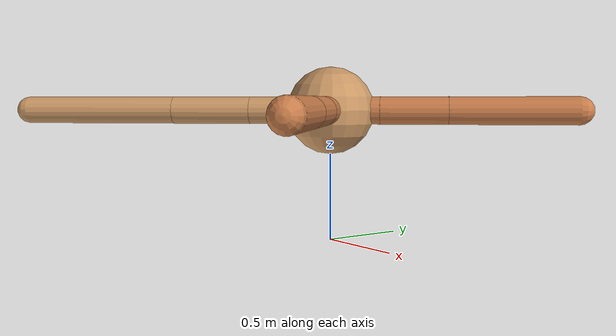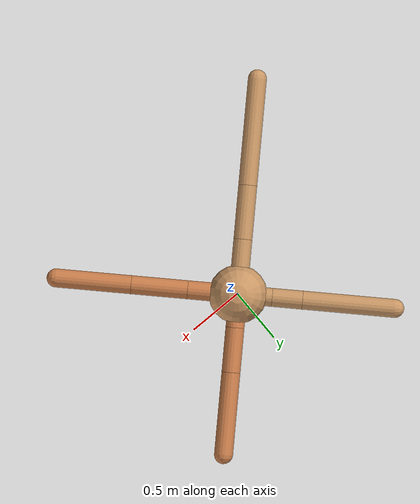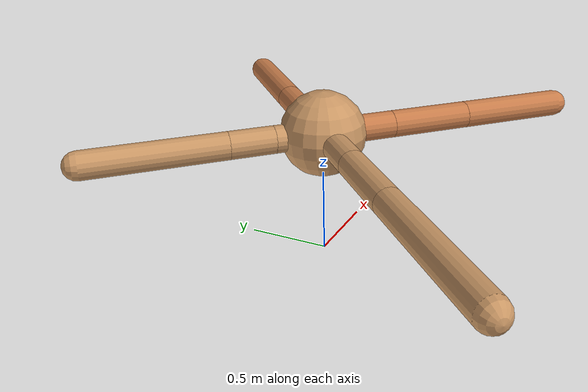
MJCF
<mujoco model="ant">
  <compiler angle="degree" coordinate="local" inertiafromgeom="true" />
  <option integrator="RK4" timestep="0.01" />
  <custom>
    <numeric data="0.0 0.0 0.55 1.0 0.0 0.0 0.0 0.0 1.0 0.0 -1.0 0.0 -1.0 0.0 1.0" name="init_qpos" />
  </custom>
  <default>
    <joint armature="1" damping="1" limited="true" />
    <geom conaffinity="0" condim="3" density="5.0" friction="1.5 0.1 0.1" margin="0.01" rgba="0.8 0.6 0.4 1" />
  </default>
  <worldbody>
    <body name="torso" pos="0 0 0.75">
      <geom name="torso_geom" pos="0 0 0" size="0.25" type="sphere" />

      <body name="front_left_leg" pos="0 0 0">
        <geom fromto="0.0 0.0 0.0 0.2 0.2 0.0" name="aux_1_geom" size="0.08" type="capsule" rgba=".8 .5 .3 1" />
        <body name="aux_1" pos="0.2 0.2 0.0">
          <joint axis="0 0 1" name="hip_1" pos="0.0 0.0 0.0" range="-40 40" type="hinge" />
          <geom fromto="0.0 0.0 0.0 0.2698330181244757 0.2698330181244757 0.0" name="left_leg_geom" size="0.08" type="capsule" rgba=".8 .5 .3 1" />
          <body pos="0.2698330181244757 0.2698330181244757 0.0" name="front_left_foot">
            <joint axis="-1 1 0" name="ankle_1" pos="0.0 0.0 0.0" range="30 100" type="hinge" />
            <geom fromto="0.0 0.0 0.0 0.49726119314078937 0.49726119314078937 0.0" name="left_ankle_geom" size="0.08" type="capsule" rgba=".8 .5 .3 1" />
          </body>
        </body>
      </body>
      <body name="front_right_leg" pos="0 0 0">
        <geom fromto="0.0 0.0 0.0 -0.2044991889078928 0.2044991889078928 0.0" name="aux_2_geom" size="0.08" type="capsule" />
        <body name="aux_2" pos="-0.2044991889078928 0.2044991889078928 0.0">
          <joint axis="0 0 1" name="hip_2" pos="0.0 0.0 0.0" range="-40 40" type="hinge" />
          <geom fromto="0.0 0.0 0.0 -0.18313912733584276 0.18313912733584276 0.0" name="right_leg_geom" size="0.08" type="capsule" />
          <body pos="-0.18313912733584276 0.18313912733584276 0.0" name="front_right_foot">
            <joint axis="1 1 0" name="ankle_2" pos="0.0 0.0 0.0" range="-100 -30" type="hinge" />
            <geom fromto="0.0 0.0 0.0 -0.5582075049166243 0.5582075049166243 0.0" name="right_ankle_geom" size="0.08" type="capsule" />
          </body>
        </body>
      </body>
      <body name="left_back_leg" pos="0 0 0">
        <geom fromto="0.0 0.0 0.0 -0.3315882854671972 -0.3315882854671972 0.0" name="aux_3_geom" size="0.08" type="capsule" />
        <body name="aux_3" pos="-0.3315882854671972 -0.3315882854671972 0.0">
          <joint axis="0 0 1" name="hip_3" pos="0.0 0.0 0.0" range="-40 40" type="hinge" />
          <geom fromto="0.0 0.0 0.0 -0.32599519645476344 -0.32599519645476344 0.0" name="back_leg_geom" size="0.08" type="capsule" />
          <body pos="-0.32599519645476344 -0.32599519645476344 0.0" name="left_back_foot">
            <joint axis="-1 1 0" name="ankle_3" pos="0.0 0.0 0.0" range="-100 -30" type="hinge" />
            <geom fromto="0.0 0.0 0.0 -0.6425485721029982 -0.6425485721029982 0.0" name="third_ankle_geom" size="0.08" type="capsule" />
          </body>
        </body>
      </body>
      <body name="right_back_leg" pos="0 0 0">
        <geom fromto="0.0 0.0 0.0 0.30341390553826253 -0.30341390553826253 0.0" name="aux_4_geom" size="0.08" type="capsule" rgba=".8 .5 .3 1" />
        <body name="aux_4" pos="0.30341390553826253 -0.30341390553826253 0.0">
          <joint axis="0 0 1" name="hip_4" pos="0.0 0.0 0.0" range="-40 40" type="hinge" />
          <geom fromto="0.0 0.0 0.0 0.34022435664751194 -0.34022435664751194 0.0" name="rightback_leg_geom" size="0.08" type="capsule" rgba=".8 .5 .3 1" />
          <body pos="0.34022435664751194 -0.34022435664751194 0.0" name="right_back_foot">
            <joint axis="1 1 0" name="ankle_4" pos="0.0 0.0 0.0" range="30 100" type="hinge" />
            <geom fromto="0.0 0.0 0.0 0.45384838617382617 -0.45384838617382617 0.0" name="fourth_ankle_geom" size="0.08" type="capsule" rgba=".8 .5 .3 1" />
          </body>
        </body>
      </body>
    </body>
  </worldbody>
  <actuator>
    <motor ctrllimited="true" ctrlrange="-1.0 1.0" joint="hip_4" gear="150" />
    <motor ctrllimited="true" ctrlrange="-1.0 1.0" joint="ankle_4" gear="150" />
    <motor ctrllimited="true" ctrlrange="-1.0 1.0" joint="hip_1" gear="150" />
    <motor ctrllimited="true" ctrlrange="-1.0 1.0" joint="ankle_1" gear="150" />
    <motor ctrllimited="true" ctrlrange="-1.0 1.0" joint="hip_2" gear="150" />
    <motor ctrllimited="true" ctrlrange="-1.0 1.0" joint="ankle_2" gear="150" />
    <motor ctrllimited="true" ctrlrange="-1.0 1.0" joint="hip_3" gear="150" />
    <motor ctrllimited="true" ctrlrange="-1.0 1.0" joint="ankle_3" gear="150" />
  </actuator>
</mujoco>
